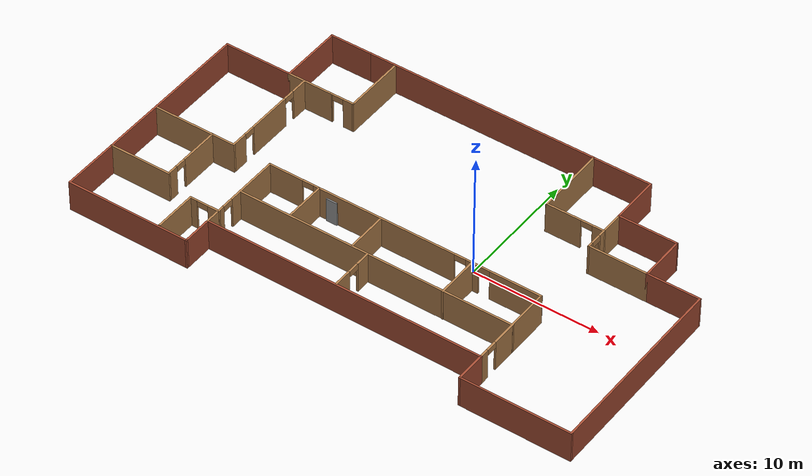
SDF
<?xml version='1.0'?>
<sdf version='1.6'>
  <model name='model'>
    <pose frame=''>-5.34614 0.527139 0 0 -0 0</pose>
    <link name='Door_8'>
      <collision name='Door_8_Collision'>
        <geometry>
          <box>
            <size>0.9 0.17 2</size>
          </box>
        </geometry>
        <pose frame=''>0 0 1 0 -0 0</pose>
      </collision>
      <visual name='Door_8_Visual'>
        <pose frame=''>0 0 1 0 -0 0</pose>
        <geometry>
          <box>
            <size>0.9 0.17 2</size>
          </box>
        </geometry>
        <material>
          <script>
            <uri>file://media/materials/scripts/gazebo.material</uri>
            <name>Gazebo/Grey</name>
          </script>
        </material>
      </visual>
      <pose frame=''>-5.16966 -2.07672 0 0 -0 0</pose>
    </link>
    <link name='Wall_34'>
      <collision name='Wall_34_Collision'>
        <geometry>
          <box>
            <size>23.2038 0.15 2.5</size>
          </box>
        </geometry>
        <pose frame=''>0 0 1.25 0 -0 0</pose>
      </collision>
      <visual name='Wall_34_Visual'>
        <pose frame=''>0 0 1.25 0 -0 0</pose>
        <geometry>
          <box>
            <size>23.2038 0.15 2.5</size>
          </box>
        </geometry>
        <material>
          <script>
            <uri>file://media/materials/scripts/gazebo.material</uri>
            <name>Gazebo/Bricks</name>
          </script>
          <ambient>0.760784 0.662745 0.627451 1</ambient>
        </material>
        <meta>
          <layer>0</layer>
        </meta>
      </visual>
      <pose frame=''>0.04806 11.275 0 0 -0 1.2e-05</pose>
    </link>
    <link name='Wall_36'>
      <collision name='Wall_36_Collision'>
        <geometry>
          <box>
            <size>4 0.15 2.5</size>
          </box>
        </geometry>
        <pose frame=''>0 0 1.25 0 -0 0</pose>
      </collision>
      <visual name='Wall_36_Visual'>
        <pose frame=''>0 0 1.25 0 -0 0</pose>
        <geometry>
          <box>
            <size>4 0.15 2.5</size>
          </box>
        </geometry>
        <material>
          <script>
            <uri>file://media/materials/scripts/gazebo.material</uri>
            <name>Gazebo/Bricks</name>
          </script>
          <ambient>0.760784 0.662745 0.627451 1</ambient>
        </material>
        <meta>
          <layer>0</layer>
        </meta>
      </visual>
      <pose frame=''>11.5751 9.35 0 0 0 -1.57075</pose>
    </link>
    <link name='Wall_37'>
      <collision name='Wall_37_Collision'>
        <geometry>
          <box>
            <size>4.74984 0.15 2.5</size>
          </box>
        </geometry>
        <pose frame=''>0 0 1.25 0 -0 0</pose>
      </collision>
      <visual name='Wall_37_Visual'>
        <pose frame=''>0 0 1.25 0 -0 0</pose>
        <geometry>
          <box>
            <size>4.74984 0.15 2.5</size>
          </box>
        </geometry>
        <material>
          <script>
            <uri>file://media/materials/scripts/gazebo.material</uri>
            <name>Gazebo/Bricks</name>
          </script>
          <ambient>0.760784 0.662745 0.627451 1</ambient>
        </material>
        <meta>
          <layer>0</layer>
        </meta>
      </visual>
      <pose frame=''>13.8751 7.425 0 0 -0 6.1e-05</pose>
    </link>
    <link name='Wall_38'>
      <collision name='Wall_38_Collision'>
        <geometry>
          <box>
            <size>3.75 0.15 2.5</size>
          </box>
        </geometry>
        <pose frame=''>0 0 1.25 0 -0 0</pose>
      </collision>
      <visual name='Wall_38_Visual'>
        <pose frame=''>0 0 1.25 0 -0 0</pose>
        <geometry>
          <box>
            <size>3.75 0.15 2.5</size>
          </box>
        </geometry>
        <material>
          <script>
            <uri>file://media/materials/scripts/gazebo.material</uri>
            <name>Gazebo/Bricks</name>
          </script>
          <ambient>0.760784 0.662745 0.627451 1</ambient>
        </material>
        <meta>
          <layer>0</layer>
        </meta>
      </visual>
      <pose frame=''>16.1751 5.625 0 0 0 -1.57075</pose>
    </link>
    <link name='Wall_39'>
      <collision name='Wall_39_Collision'>
        <geometry>
          <box>
            <size>4.25 0.15 2.5</size>
          </box>
        </geometry>
        <pose frame=''>0 0 1.25 0 -0 0</pose>
      </collision>
      <visual name='Wall_39_Visual'>
        <pose frame=''>0 0 1.25 0 -0 0</pose>
        <geometry>
          <box>
            <size>4.25 0.15 2.5</size>
          </box>
        </geometry>
        <material>
          <script>
            <uri>file://media/materials/scripts/gazebo.material</uri>
            <name>Gazebo/Bricks</name>
          </script>
          <ambient>0.760784 0.662745 0.627451 1</ambient>
        </material>
        <meta>
          <layer>0</layer>
        </meta>
      </visual>
      <pose frame=''>18.2251 3.825 0 0 -0 6.9e-05</pose>
    </link>
    <link name='Wall_40'>
      <collision name='Wall_40_Collision'>
        <geometry>
          <box>
            <size>15.25 0.15 2.5</size>
          </box>
        </geometry>
        <pose frame=''>0 0 1.25 0 -0 0</pose>
      </collision>
      <visual name='Wall_40_Visual'>
        <pose frame=''>0 0 1.25 0 -0 0</pose>
        <geometry>
          <box>
            <size>15.25 0.15 2.5</size>
          </box>
        </geometry>
        <material>
          <script>
            <uri>file://media/materials/scripts/gazebo.material</uri>
            <name>Gazebo/Bricks</name>
          </script>
          <ambient>0.760784 0.662745 0.627451 1</ambient>
        </material>
        <meta>
          <layer>0</layer>
        </meta>
      </visual>
      <pose frame=''>20.275 -3.72486 0 0 0 -1.5708</pose>
    </link>
    <link name='Wall_41'>
      <collision name='Wall_41_Collision'>
        <geometry>
          <box>
            <size>8.75 0.15 2.5</size>
          </box>
        </geometry>
        <pose frame=''>0 0 1.25 0 -0 0</pose>
      </collision>
      <visual name='Wall_41_Visual'>
        <pose frame=''>0 0 1.25 0 -0 0</pose>
        <geometry>
          <box>
            <size>8.75 0.15 2.5</size>
          </box>
        </geometry>
        <material>
          <script>
            <uri>file://media/materials/scripts/gazebo.material</uri>
            <name>Gazebo/Bricks</name>
          </script>
          <ambient>0.760784 0.662745 0.627451 1</ambient>
        </material>
        <meta>
          <layer>0</layer>
        </meta>
      </visual>
      <pose frame=''>15.975 -11.2749 0 0 -0 3.14159</pose>
    </link>
    <link name='Wall_42'>
      <collision name='Wall_42_Collision'>
        <geometry>
          <box>
            <size>2.5 0.15 2.5</size>
          </box>
        </geometry>
        <pose frame=''>0 0 1.25 0 -0 0</pose>
      </collision>
      <visual name='Wall_42_Visual'>
        <pose frame=''>0 0 1.25 0 -0 0</pose>
        <geometry>
          <box>
            <size>2.5 0.15 2.5</size>
          </box>
        </geometry>
        <material>
          <script>
            <uri>file://media/materials/scripts/gazebo.material</uri>
            <name>Gazebo/Bricks</name>
          </script>
          <ambient>0.760784 0.662745 0.627451 1</ambient>
        </material>
        <meta>
          <layer>0</layer>
        </meta>
      </visual>
      <pose frame=''>11.675 -10.0999 0 0 -0 1.5708</pose>
    </link>
    <link name='Wall_43'>
      <collision name='Wall_43_Collision'>
        <geometry>
          <box>
            <size>22.25 0.15 2.5</size>
          </box>
        </geometry>
        <pose frame=''>0 0 1.25 0 -0 0</pose>
      </collision>
      <visual name='Wall_43_Visual'>
        <pose frame=''>0 0 1.25 0 -0 0</pose>
        <geometry>
          <box>
            <size>22.25 0.15 2.5</size>
          </box>
        </geometry>
        <material>
          <script>
            <uri>file://media/materials/scripts/gazebo.material</uri>
            <name>Gazebo/Bricks</name>
          </script>
          <ambient>0.760784 0.662745 0.627451 1</ambient>
        </material>
        <meta>
          <layer>0</layer>
        </meta>
      </visual>
      <pose frame=''>0.624981 -8.92486 0 0 -0 3.14159</pose>
    </link>
    <link name='Wall_44'>
      <collision name='Wall_44_Collision'>
        <geometry>
          <box>
            <size>2.5 0.15 2.5</size>
          </box>
        </geometry>
        <pose frame=''>0 0 1.25 0 -0 0</pose>
      </collision>
      <visual name='Wall_44_Visual'>
        <pose frame=''>0 0 1.25 0 -0 0</pose>
        <geometry>
          <box>
            <size>2.5 0.15 2.5</size>
          </box>
        </geometry>
        <material>
          <script>
            <uri>file://media/materials/scripts/gazebo.material</uri>
            <name>Gazebo/Bricks</name>
          </script>
          <ambient>0.760784 0.662745 0.627451 1</ambient>
        </material>
        <meta>
          <layer>0</layer>
        </meta>
      </visual>
      <pose frame=''>-10.425 -10.0999 0 0 0 -1.5708</pose>
    </link>
    <link name='Wall_45'>
      <collision name='Wall_45_Collision'>
        <geometry>
          <box>
            <size>10 0.15 2.5</size>
          </box>
        </geometry>
        <pose frame=''>0 0 1.25 0 -0 0</pose>
      </collision>
      <visual name='Wall_45_Visual'>
        <pose frame=''>0 0 1.25 0 -0 0</pose>
        <geometry>
          <box>
            <size>10 0.15 2.5</size>
          </box>
        </geometry>
        <material>
          <script>
            <uri>file://media/materials/scripts/gazebo.material</uri>
            <name>Gazebo/Bricks</name>
          </script>
          <ambient>0.760784 0.662745 0.627451 1</ambient>
        </material>
        <meta>
          <layer>0</layer>
        </meta>
      </visual>
      <pose frame=''>-15.3499 -11.275 0 0 0 -3.14156</pose>
    </link>
    <link name='Wall_46'>
      <collision name='Wall_46_Collision'>
        <geometry>
          <box>
            <size>17.685 0.15 2.5</size>
          </box>
        </geometry>
        <pose frame=''>0 0 1.25 0 -0 0</pose>
      </collision>
      <visual name='Wall_46_Visual'>
        <pose frame=''>0 0 1.25 0 -0 0</pose>
        <geometry>
          <box>
            <size>17.685 0.15 2.5</size>
          </box>
        </geometry>
        <material>
          <script>
            <uri>file://media/materials/scripts/gazebo.material</uri>
            <name>Gazebo/Bricks</name>
          </script>
          <ambient>0.760784 0.662745 0.627451 1</ambient>
        </material>
        <meta>
          <layer>0</layer>
        </meta>
      </visual>
      <pose frame=''>-20.2749 -2.50764 0 0 -0 1.5708</pose>
    </link>
    <link name='Wall_47'>
      <collision name='Wall_47_Collision'>
        <geometry>
          <box>
            <size>5.52741 0.15 2.5</size>
          </box>
        </geometry>
        <pose frame=''>0 0 1.25 0 -0 0</pose>
      </collision>
      <visual name='Wall_47_Visual'>
        <pose frame=''>0 0 1.25 0 -0 0</pose>
        <geometry>
          <box>
            <size>5.52741 0.15 2.5</size>
          </box>
        </geometry>
        <material>
          <script>
            <uri>file://media/materials/scripts/gazebo.material</uri>
            <name>Gazebo/Bricks</name>
          </script>
          <ambient>0.760784 0.662745 0.627451 1</ambient>
        </material>
        <meta>
          <layer>0</layer>
        </meta>
      </visual>
      <pose frame=''>-17.5864 6.25986 0 0 -0 0</pose>
    </link>
    <link name='Wall_48'>
      <collision name='Wall_48_Collision'>
        <geometry>
          <box>
            <size>5.16467 0.15 2.5</size>
          </box>
        </geometry>
        <pose frame=''>0 0 1.25 0 -0 0</pose>
      </collision>
      <visual name='Wall_48_Visual'>
        <pose frame=''>0 0 1.25 0 -0 0</pose>
        <geometry>
          <box>
            <size>5.16467 0.15 2.5</size>
          </box>
        </geometry>
        <material>
          <script>
            <uri>file://media/materials/scripts/gazebo.material</uri>
            <name>Gazebo/Bricks</name>
          </script>
          <ambient>0.760784 0.662745 0.627451 1</ambient>
        </material>
        <meta>
          <layer>0</layer>
        </meta>
      </visual>
      <pose frame=''>-14.8979 8.76736 0 0 -0 1.5708</pose>
    </link>
    <link name='Wall_49'>
      <collision name='Wall_49_Collision'>
        <geometry>
          <box>
            <size>3.569 0.15 2.5</size>
          </box>
        </geometry>
        <pose frame=''>0 0 1.25 0 -0 0</pose>
      </collision>
      <visual name='Wall_49_Visual'>
        <pose frame=''>0 0 1.25 0 -0 0</pose>
        <geometry>
          <box>
            <size>3.569 0.15 2.5</size>
          </box>
        </geometry>
        <material>
          <script>
            <uri>file://media/materials/scripts/gazebo.material</uri>
            <name>Gazebo/Bricks</name>
          </script>
          <ambient>0.760784 0.662745 0.627451 1</ambient>
        </material>
        <meta>
          <layer>0</layer>
        </meta>
      </visual>
      <pose frame=''>-13.1884 11.2749 0 0 -0 0</pose>
    </link>
    <link name='Wall_51'>
      <collision name='Wall_51_Collision'>
        <geometry>
          <box>
            <size>3.75 0.15 2.5</size>
          </box>
        </geometry>
        <pose frame=''>0 0 1.25 0 -0 0</pose>
      </collision>
      <visual name='Wall_51_Visual'>
        <pose frame=''>0 0 1.25 0 -0 0</pose>
        <geometry>
          <box>
            <size>3.75 0.15 2.5</size>
          </box>
        </geometry>
        <material>
          <script>
            <uri>file://media/materials/scripts/gazebo.material</uri>
            <name>Gazebo/Wood</name>
          </script>
          <ambient>0.996078 0.47451 0.0196078 1</ambient>
        </material>
        <meta>
          <layer>0</layer>
        </meta>
      </visual>
      <pose frame=''>-13.0979 6.25986 0 0 -0 0</pose>
    </link>
    <link name='Wall_52'>
      <pose frame=''>-10.3729 6.25986 0 0 -0 0</pose>
      <visual name='Wall_52_Visual_0'>
        <pose frame=''>-0.904318 0 1.25 0 -0 0</pose>
        <geometry>
          <box>
            <size>0.191363 0.15 2.5</size>
          </box>
        </geometry>
        <material>
          <script>
            <uri>file://media/materials/scripts/gazebo.material</uri>
            <name>Gazebo/Wood</name>
          </script>
          <ambient>0.996078 0.47451 0.0196078 1</ambient>
        </material>
        <meta>
          <layer>0</layer>
        </meta>
      </visual>
      <collision name='Wall_52_Collision_0'>
        <geometry>
          <box>
            <size>0.191363 0.15 2.5</size>
          </box>
        </geometry>
        <pose frame=''>-0.904318 0 1.25 0 -0 0</pose>
      </collision>
      <visual name='Wall_52_Visual_1'>
        <pose frame=''>0.545682 0 1.25 0 -0 0</pose>
        <geometry>
          <box>
            <size>0.908637 0.15 2.5</size>
          </box>
        </geometry>
        <material>
          <script>
            <uri>file://media/materials/scripts/gazebo.material</uri>
            <name>Gazebo/Wood</name>
          </script>
          <ambient>0.996078 0.47451 0.0196078 1</ambient>
        </material>
        <meta>
          <layer>0</layer>
        </meta>
      </visual>
      <collision name='Wall_52_Collision_1'>
        <geometry>
          <box>
            <size>0.908637 0.15 2.5</size>
          </box>
        </geometry>
        <pose frame=''>0.545682 0 1.25 0 -0 0</pose>
      </collision>
      <visual name='Wall_52_Visual_2'>
        <pose frame=''>-0.358637 0 2.25 0 -0 0</pose>
        <geometry>
          <box>
            <size>0.9 0.15 0.5</size>
          </box>
        </geometry>
        <material>
          <script>
            <uri>file://media/materials/scripts/gazebo.material</uri>
            <name>Gazebo/Wood</name>
          </script>
          <ambient>0.996078 0.47451 0.0196078 1</ambient>
        </material>
        <meta>
          <layer>0</layer>
        </meta>
      </visual>
      <collision name='Wall_52_Collision_2'>
        <geometry>
          <box>
            <size>0.9 0.15 0.5</size>
          </box>
        </geometry>
        <pose frame=''>-0.358637 0 2.25 0 -0 0</pose>
      </collision>
    </link>
    <link name='Wall_53'>
      <collision name='Wall_53_Collision'>
        <geometry>
          <box>
            <size>5 0.15 2.5</size>
          </box>
        </geometry>
        <pose frame=''>0 0 1.25 0 -0 0</pose>
      </collision>
      <visual name='Wall_53_Visual'>
        <pose frame=''>0 0 1.25 0 -0 0</pose>
        <geometry>
          <box>
            <size>5 0.15 2.5</size>
          </box>
        </geometry>
        <material>
          <script>
            <uri>file://media/materials/scripts/gazebo.material</uri>
            <name>Gazebo/Wood</name>
          </script>
          <ambient>0.996078 0.47451 0.0196078 1</ambient>
        </material>
        <meta>
          <layer>0</layer>
        </meta>
      </visual>
      <pose frame=''>-9.44786 8.68486 0 0 -0 1.5708</pose>
    </link>
    <link name='Wall_55'>
      <pose frame=''>-13.5999 2.19855 0 0 0 -1.5708</pose>
      <visual name='Wall_55_Visual_0'>
        <pose frame=''>-3.40302 0 1.25 0 -0 0</pose>
        <geometry>
          <box>
            <size>1.44397 0.15 2.5</size>
          </box>
        </geometry>
        <material>
          <script>
            <uri>file://media/materials/scripts/gazebo.material</uri>
            <name>Gazebo/Wood</name>
          </script>
          <ambient>0.996078 0.47451 0.0196078 1</ambient>
        </material>
        <meta>
          <layer>0</layer>
        </meta>
      </visual>
      <collision name='Wall_55_Collision_0'>
        <geometry>
          <box>
            <size>1.44397 0.15 2.5</size>
          </box>
        </geometry>
        <pose frame=''>-3.40302 0 1.25 0 -0 0</pose>
      </collision>
      <visual name='Wall_55_Visual_1'>
        <pose frame=''>0.042675 0 1.25 0 -0 0</pose>
        <geometry>
          <box>
            <size>3.64742 0.15 2.5</size>
          </box>
        </geometry>
        <material>
          <script>
            <uri>file://media/materials/scripts/gazebo.material</uri>
            <name>Gazebo/Wood</name>
          </script>
          <ambient>0.996078 0.47451 0.0196078 1</ambient>
        </material>
        <meta>
          <layer>0</layer>
        </meta>
      </visual>
      <collision name='Wall_55_Collision_1'>
        <geometry>
          <box>
            <size>3.64742 0.15 2.5</size>
          </box>
        </geometry>
        <pose frame=''>0.042675 0 1.25 0 -0 0</pose>
      </collision>
      <visual name='Wall_55_Visual_2'>
        <pose frame=''>3.44569 0 1.25 0 -0 0</pose>
        <geometry>
          <box>
            <size>1.35862 0.15 2.5</size>
          </box>
        </geometry>
        <material>
          <script>
            <uri>file://media/materials/scripts/gazebo.material</uri>
            <name>Gazebo/Wood</name>
          </script>
          <ambient>0.996078 0.47451 0.0196078 1</ambient>
        </material>
        <meta>
          <layer>0</layer>
        </meta>
      </visual>
      <collision name='Wall_55_Collision_2'>
        <geometry>
          <box>
            <size>1.35862 0.15 2.5</size>
          </box>
        </geometry>
        <pose frame=''>3.44569 0 1.25 0 -0 0</pose>
      </collision>
      <visual name='Wall_55_Visual_3'>
        <pose frame=''>-2.23103 0 2.25 0 -0 0</pose>
        <geometry>
          <box>
            <size>0.9 0.15 0.5</size>
          </box>
        </geometry>
        <material>
          <script>
            <uri>file://media/materials/scripts/gazebo.material</uri>
            <name>Gazebo/Wood</name>
          </script>
          <ambient>0.996078 0.47451 0.0196078 1</ambient>
        </material>
        <meta>
          <layer>0</layer>
        </meta>
      </visual>
      <collision name='Wall_55_Collision_3'>
        <geometry>
          <box>
            <size>0.9 0.15 0.5</size>
          </box>
        </geometry>
        <pose frame=''>-2.23103 0 2.25 0 -0 0</pose>
      </collision>
      <visual name='Wall_55_Visual_4'>
        <pose frame=''>2.31638 0 2.25 0 -0 0</pose>
        <geometry>
          <box>
            <size>0.9 0.15 0.5</size>
          </box>
        </geometry>
        <material>
          <script>
            <uri>file://media/materials/scripts/gazebo.material</uri>
            <name>Gazebo/Wood</name>
          </script>
          <ambient>0.996078 0.47451 0.0196078 1</ambient>
        </material>
        <meta>
          <layer>0</layer>
        </meta>
      </visual>
      <collision name='Wall_55_Collision_4'>
        <geometry>
          <box>
            <size>0.9 0.15 0.5</size>
          </box>
        </geometry>
        <pose frame=''>2.31638 0 2.25 0 -0 0</pose>
      </collision>
    </link>
    <link name='Wall_56'>
      <collision name='Wall_56_Collision'>
        <geometry>
          <box>
            <size>6.75 0.15 2.5</size>
          </box>
        </geometry>
        <pose frame=''>0 0 1.25 0 -0 0</pose>
      </collision>
      <visual name='Wall_56_Visual'>
        <pose frame=''>0 0 1.25 0 -0 0</pose>
        <geometry>
          <box>
            <size>6.75 0.15 2.5</size>
          </box>
        </geometry>
        <material>
          <script>
            <uri>file://media/materials/scripts/gazebo.material</uri>
            <name>Gazebo/Wood</name>
          </script>
          <ambient>0.996078 0.47451 0.0196078 1</ambient>
        </material>
        <meta>
          <layer>0</layer>
        </meta>
      </visual>
      <pose frame=''>-16.8999 -1.85145 0 0 -0 3.14159</pose>
    </link>
    <link name='Wall_58'>
      <pose frame=''>-15.4188 -4.29183 0 0 0 -1.5708</pose>
      <visual name='Wall_58_Visual_0'>
        <pose frame=''>-0.903514 0 1.25 0 -0 0</pose>
        <geometry>
          <box>
            <size>3.19297 0.15 2.5</size>
          </box>
        </geometry>
        <material>
          <script>
            <uri>file://media/materials/scripts/gazebo.material</uri>
            <name>Gazebo/Wood</name>
          </script>
          <ambient>0.996078 0.47451 0.0196078 1</ambient>
        </material>
        <meta>
          <layer>0</layer>
        </meta>
      </visual>
      <collision name='Wall_58_Collision_0'>
        <geometry>
          <box>
            <size>3.19297 0.15 2.5</size>
          </box>
        </geometry>
        <pose frame=''>-0.903514 0 1.25 0 -0 0</pose>
      </collision>
      <visual name='Wall_58_Visual_1'>
        <pose frame=''>2.04649 0 1.25 0 -0 0</pose>
        <geometry>
          <box>
            <size>0.907027 0.15 2.5</size>
          </box>
        </geometry>
        <material>
          <script>
            <uri>file://media/materials/scripts/gazebo.material</uri>
            <name>Gazebo/Wood</name>
          </script>
          <ambient>0.996078 0.47451 0.0196078 1</ambient>
        </material>
        <meta>
          <layer>0</layer>
        </meta>
      </visual>
      <collision name='Wall_58_Collision_1'>
        <geometry>
          <box>
            <size>0.907027 0.15 2.5</size>
          </box>
        </geometry>
        <pose frame=''>2.04649 0 1.25 0 -0 0</pose>
      </collision>
      <visual name='Wall_58_Visual_2'>
        <pose frame=''>1.14297 0 2.25 0 -0 0</pose>
        <geometry>
          <box>
            <size>0.9 0.15 0.5</size>
          </box>
        </geometry>
        <material>
          <script>
            <uri>file://media/materials/scripts/gazebo.material</uri>
            <name>Gazebo/Wood</name>
          </script>
          <ambient>0.996078 0.47451 0.0196078 1</ambient>
        </material>
        <meta>
          <layer>0</layer>
        </meta>
      </visual>
      <collision name='Wall_58_Collision_2'>
        <geometry>
          <box>
            <size>0.9 0.15 0.5</size>
          </box>
        </geometry>
        <pose frame=''>1.14297 0 2.25 0 -0 0</pose>
      </collision>
    </link>
    <link name='Wall_59'>
      <collision name='Wall_59_Collision'>
        <geometry>
          <box>
            <size>5 0.15 2.5</size>
          </box>
        </geometry>
        <pose frame=''>0 0 1.25 0 -0 0</pose>
      </collision>
      <visual name='Wall_59_Visual'>
        <pose frame=''>0 0 1.25 0 -0 0</pose>
        <geometry>
          <box>
            <size>5 0.15 2.5</size>
          </box>
        </geometry>
        <material>
          <script>
            <uri>file://media/materials/scripts/gazebo.material</uri>
            <name>Gazebo/Wood</name>
          </script>
          <ambient>0.996078 0.47451 0.0196078 1</ambient>
        </material>
        <meta>
          <layer>0</layer>
        </meta>
      </visual>
      <pose frame=''>-17.8438 -6.71683 0 0 -0 3.14159</pose>
    </link>
    <link name='Wall_61'>
      <pose frame=''>-10.425 -5.47773 0 0 -0 1.5708</pose>
      <visual name='Wall_61_Visual_0'>
        <pose frame=''>-2.62923 0 1.25 0 -0 0</pose>
        <geometry>
          <box>
            <size>1.78581 0.15 2.5</size>
          </box>
        </geometry>
        <material>
          <script>
            <uri>file://media/materials/scripts/gazebo.material</uri>
            <name>Gazebo/Wood</name>
          </script>
          <ambient>0.435294 0.796078 0.67451 1</ambient>
        </material>
        <meta>
          <layer>0</layer>
        </meta>
      </visual>
      <collision name='Wall_61_Collision_0'>
        <geometry>
          <box>
            <size>1.78581 0.15 2.5</size>
          </box>
        </geometry>
        <pose frame=''>-2.62923 0 1.25 0 -0 0</pose>
      </collision>
      <visual name='Wall_61_Visual_1'>
        <pose frame=''>1.3429 0 1.25 0 -0 0</pose>
        <geometry>
          <box>
            <size>4.35846 0.15 2.5</size>
          </box>
        </geometry>
        <material>
          <script>
            <uri>file://media/materials/scripts/gazebo.material</uri>
            <name>Gazebo/Wood</name>
          </script>
          <ambient>0.435294 0.796078 0.67451 1</ambient>
        </material>
        <meta>
          <layer>0</layer>
        </meta>
      </visual>
      <collision name='Wall_61_Collision_1'>
        <geometry>
          <box>
            <size>4.35846 0.15 2.5</size>
          </box>
        </geometry>
        <pose frame=''>1.3429 0 1.25 0 -0 0</pose>
      </collision>
      <visual name='Wall_61_Visual_2'>
        <pose frame=''>-1.28633 0 2.25 0 -0 0</pose>
        <geometry>
          <box>
            <size>0.9 0.15 0.5</size>
          </box>
        </geometry>
        <material>
          <script>
            <uri>file://media/materials/scripts/gazebo.material</uri>
            <name>Gazebo/Wood</name>
          </script>
          <ambient>0.435294 0.796078 0.67451 1</ambient>
        </material>
        <meta>
          <layer>0</layer>
        </meta>
      </visual>
      <collision name='Wall_61_Collision_2'>
        <geometry>
          <box>
            <size>0.9 0.15 0.5</size>
          </box>
        </geometry>
        <pose frame=''>-1.28633 0 2.25 0 -0 0</pose>
      </collision>
    </link>
    <link name='Wall_62'>
      <pose frame=''>0.624981 -1.99561 0 0 -0 0</pose>
      <visual name='Wall_62_Visual_0'>
        <pose frame=''>-9.69924 0 1.25 0 -0 0</pose>
        <geometry>
          <box>
            <size>2.85151 0.15 2.5</size>
          </box>
        </geometry>
        <material>
          <script>
            <uri>file://media/materials/scripts/gazebo.material</uri>
            <name>Gazebo/Wood</name>
          </script>
          <ambient>0.435294 0.796078 0.67451 1</ambient>
        </material>
        <meta>
          <layer>0</layer>
        </meta>
      </visual>
      <collision name='Wall_62_Collision_0'>
        <geometry>
          <box>
            <size>2.85151 0.15 2.5</size>
          </box>
        </geometry>
        <pose frame=''>-9.69924 0 1.25 0 -0 0</pose>
      </collision>
      <visual name='Wall_62_Visual_1'>
        <pose frame=''>-1.59702 0 1.25 0 -0 0</pose>
        <geometry>
          <box>
            <size>11.5529 0.15 2.5</size>
          </box>
        </geometry>
        <material>
          <script>
            <uri>file://media/materials/scripts/gazebo.material</uri>
            <name>Gazebo/Wood</name>
          </script>
          <ambient>0.435294 0.796078 0.67451 1</ambient>
        </material>
        <meta>
          <layer>0</layer>
        </meta>
      </visual>
      <collision name='Wall_62_Collision_1'>
        <geometry>
          <box>
            <size>11.5529 0.15 2.5</size>
          </box>
        </geometry>
        <pose frame=''>-1.59702 0 1.25 0 -0 0</pose>
      </collision>
      <visual name='Wall_62_Visual_2'>
        <pose frame=''>5.59139 0 1.25 0 -0 0</pose>
        <geometry>
          <box>
            <size>1.02391 0.15 2.5</size>
          </box>
        </geometry>
        <material>
          <script>
            <uri>file://media/materials/scripts/gazebo.material</uri>
            <name>Gazebo/Wood</name>
          </script>
          <ambient>0.435294 0.796078 0.67451 1</ambient>
        </material>
        <meta>
          <layer>0</layer>
        </meta>
      </visual>
      <collision name='Wall_62_Collision_2'>
        <geometry>
          <box>
            <size>1.02391 0.15 2.5</size>
          </box>
        </geometry>
        <pose frame=''>5.59139 0 1.25 0 -0 0</pose>
      </collision>
      <visual name='Wall_62_Visual_3'>
        <pose frame=''>9.06417 0 1.25 0 -0 0</pose>
        <geometry>
          <box>
            <size>4.12166 0.15 2.5</size>
          </box>
        </geometry>
        <material>
          <script>
            <uri>file://media/materials/scripts/gazebo.material</uri>
            <name>Gazebo/Wood</name>
          </script>
          <ambient>0.435294 0.796078 0.67451 1</ambient>
        </material>
        <meta>
          <layer>0</layer>
        </meta>
      </visual>
      <collision name='Wall_62_Collision_3'>
        <geometry>
          <box>
            <size>4.12166 0.15 2.5</size>
          </box>
        </geometry>
        <pose frame=''>9.06417 0 1.25 0 -0 0</pose>
      </collision>
      <visual name='Wall_62_Visual_4'>
        <pose frame=''>-7.82349 0 2.25 0 -0 0</pose>
        <geometry>
          <box>
            <size>0.9 0.15 0.5</size>
          </box>
        </geometry>
        <material>
          <script>
            <uri>file://media/materials/scripts/gazebo.material</uri>
            <name>Gazebo/Wood</name>
          </script>
          <ambient>0.435294 0.796078 0.67451 1</ambient>
        </material>
        <meta>
          <layer>0</layer>
        </meta>
      </visual>
      <collision name='Wall_62_Collision_4'>
        <geometry>
          <box>
            <size>0.9 0.15 0.5</size>
          </box>
        </geometry>
        <pose frame=''>-7.82349 0 2.25 0 -0 0</pose>
      </collision>
      <visual name='Wall_62_Visual_5'>
        <pose frame=''>4.62944 0 2.25 0 -0 0</pose>
        <geometry>
          <box>
            <size>0.9 0.15 0.5</size>
          </box>
        </geometry>
        <material>
          <script>
            <uri>file://media/materials/scripts/gazebo.material</uri>
            <name>Gazebo/Wood</name>
          </script>
          <ambient>0.435294 0.796078 0.67451 1</ambient>
        </material>
        <meta>
          <layer>0</layer>
        </meta>
      </visual>
      <collision name='Wall_62_Collision_5'>
        <geometry>
          <box>
            <size>0.9 0.15 0.5</size>
          </box>
        </geometry>
        <pose frame=''>4.62944 0 2.25 0 -0 0</pose>
      </collision>
      <visual name='Wall_62_Visual_6'>
        <pose frame=''>6.55334 0 2.25 0 -0 0</pose>
        <geometry>
          <box>
            <size>0.9 0.15 0.5</size>
          </box>
        </geometry>
        <material>
          <script>
            <uri>file://media/materials/scripts/gazebo.material</uri>
            <name>Gazebo/Wood</name>
          </script>
          <ambient>0.435294 0.796078 0.67451 1</ambient>
        </material>
        <meta>
          <layer>0</layer>
        </meta>
      </visual>
      <collision name='Wall_62_Collision_6'>
        <geometry>
          <box>
            <size>0.9 0.15 0.5</size>
          </box>
        </geometry>
        <pose frame=''>6.55334 0 2.25 0 -0 0</pose>
      </collision>
    </link>
    <link name='Wall_63'>
      <pose frame=''>11.675 -5.47773 0 0 0 -1.5708</pose>
      <visual name='Wall_63_Visual_0'>
        <pose frame=''>-0.853181 0 1.25 0 -0 0</pose>
        <geometry>
          <box>
            <size>5.3379 0.15 2.5</size>
          </box>
        </geometry>
        <material>
          <script>
            <uri>file://media/materials/scripts/gazebo.material</uri>
            <name>Gazebo/Wood</name>
          </script>
          <ambient>0.435294 0.796078 0.67451 1</ambient>
        </material>
        <meta>
          <layer>0</layer>
        </meta>
      </visual>
      <collision name='Wall_63_Collision_0'>
        <geometry>
          <box>
            <size>5.3379 0.15 2.5</size>
          </box>
        </geometry>
        <pose frame=''>-0.853181 0 1.25 0 -0 0</pose>
      </collision>
      <visual name='Wall_63_Visual_1'>
        <pose frame=''>3.11895 0 1.25 0 -0 0</pose>
        <geometry>
          <box>
            <size>0.806362 0.15 2.5</size>
          </box>
        </geometry>
        <material>
          <script>
            <uri>file://media/materials/scripts/gazebo.material</uri>
            <name>Gazebo/Wood</name>
          </script>
          <ambient>0.435294 0.796078 0.67451 1</ambient>
        </material>
        <meta>
          <layer>0</layer>
        </meta>
      </visual>
      <collision name='Wall_63_Collision_1'>
        <geometry>
          <box>
            <size>0.806362 0.15 2.5</size>
          </box>
        </geometry>
        <pose frame=''>3.11895 0 1.25 0 -0 0</pose>
      </collision>
      <visual name='Wall_63_Visual_2'>
        <pose frame=''>2.26577 0 2.25 0 -0 0</pose>
        <geometry>
          <box>
            <size>0.9 0.15 0.5</size>
          </box>
        </geometry>
        <material>
          <script>
            <uri>file://media/materials/scripts/gazebo.material</uri>
            <name>Gazebo/Wood</name>
          </script>
          <ambient>0.435294 0.796078 0.67451 1</ambient>
        </material>
        <meta>
          <layer>0</layer>
        </meta>
      </visual>
      <collision name='Wall_63_Collision_2'>
        <geometry>
          <box>
            <size>0.9 0.15 0.5</size>
          </box>
        </geometry>
        <pose frame=''>2.26577 0 2.25 0 -0 0</pose>
      </collision>
    </link>
    <link name='Wall_65'>
      <pose frame=''>-11.5917 -7.7435 0 0 -0 3.14159</pose>
      <visual name='Wall_65_Visual_0'>
        <pose frame=''>-0.772878 0 1.25 0 -0 0</pose>
        <geometry>
          <box>
            <size>0.954243 0.15 2.5</size>
          </box>
        </geometry>
        <material>
          <script>
            <uri>file://media/materials/scripts/gazebo.material</uri>
            <name>Gazebo/Wood</name>
          </script>
          <ambient>1 1 1 1</ambient>
        </material>
        <meta>
          <layer>0</layer>
        </meta>
      </visual>
      <collision name='Wall_65_Collision_0'>
        <geometry>
          <box>
            <size>0.954243 0.15 2.5</size>
          </box>
        </geometry>
        <pose frame=''>-0.772878 0 1.25 0 -0 0</pose>
      </collision>
      <visual name='Wall_65_Visual_1'>
        <pose frame=''>0.927122 0 1.25 0 -0 0</pose>
        <geometry>
          <box>
            <size>0.645757 0.15 2.5</size>
          </box>
        </geometry>
        <material>
          <script>
            <uri>file://media/materials/scripts/gazebo.material</uri>
            <name>Gazebo/Wood</name>
          </script>
          <ambient>1 1 1 1</ambient>
        </material>
        <meta>
          <layer>0</layer>
        </meta>
      </visual>
      <collision name='Wall_65_Collision_1'>
        <geometry>
          <box>
            <size>0.645757 0.15 2.5</size>
          </box>
        </geometry>
        <pose frame=''>0.927122 0 1.25 0 -0 0</pose>
      </collision>
      <visual name='Wall_65_Visual_2'>
        <pose frame=''>0.154243 0 2.25 0 -0 0</pose>
        <geometry>
          <box>
            <size>0.9 0.15 0.5</size>
          </box>
        </geometry>
        <material>
          <script>
            <uri>file://media/materials/scripts/gazebo.material</uri>
            <name>Gazebo/Wood</name>
          </script>
          <ambient>1 1 1 1</ambient>
        </material>
        <meta>
          <layer>0</layer>
        </meta>
      </visual>
      <collision name='Wall_65_Collision_2'>
        <geometry>
          <box>
            <size>0.9 0.15 0.5</size>
          </box>
        </geometry>
        <pose frame=''>0.154243 0 2.25 0 -0 0</pose>
      </collision>
    </link>
    <link name='Wall_66'>
      <collision name='Wall_66_Collision'>
        <geometry>
          <box>
            <size>3.5 0.15 2.5</size>
          </box>
        </geometry>
        <pose frame=''>0 0 1.25 0 -0 0</pose>
      </collision>
      <visual name='Wall_66_Visual'>
        <pose frame=''>0 0 1.25 0 -0 0</pose>
        <geometry>
          <box>
            <size>3.5 0.15 2.5</size>
          </box>
        </geometry>
        <material>
          <script>
            <uri>file://media/materials/scripts/gazebo.material</uri>
            <name>Gazebo/Wood</name>
          </script>
          <ambient>0.435294 0.796078 0.67451 1</ambient>
        </material>
        <meta>
          <layer>0</layer>
        </meta>
      </visual>
      <pose frame=''>-12.7667 -9.4185 0 0 0 -1.5708</pose>
    </link>
    <link name='Wall_68'>
      <collision name='Wall_68_Collision'>
        <geometry>
          <box>
            <size>22.25 0.15 2.5</size>
          </box>
        </geometry>
        <pose frame=''>0 0 1.25 0 -0 0</pose>
      </collision>
      <visual name='Wall_68_Visual'>
        <pose frame=''>0 0 1.25 0 -0 0</pose>
        <geometry>
          <box>
            <size>22.25 0.15 2.5</size>
          </box>
        </geometry>
        <material>
          <script>
            <uri>file://media/materials/scripts/gazebo.material</uri>
            <name>Gazebo/Wood</name>
          </script>
          <ambient>0.435294 0.796078 0.67451 1</ambient>
        </material>
        <meta>
          <layer>0</layer>
        </meta>
      </visual>
      <pose frame=''>0.633323 -5.32987 0 0 -0 0</pose>
    </link>
    <link name='Wall_71'>
      <pose frame=''>0.112139 -7.07714 0 0 0 -1.5708</pose>
      <visual name='Wall_71_Visual_0'>
        <pose frame=''>-1.1891 0 1.25 0 -0 0</pose>
        <geometry>
          <box>
            <size>1.27179 0.15 2.5</size>
          </box>
        </geometry>
        <material>
          <script>
            <uri>file://media/materials/scripts/gazebo.material</uri>
            <name>Gazebo/Wood</name>
          </script>
          <ambient>0.435294 0.796078 0.67451 1</ambient>
        </material>
        <meta>
          <layer>0</layer>
        </meta>
      </visual>
      <collision name='Wall_71_Collision_0'>
        <geometry>
          <box>
            <size>1.27179 0.15 2.5</size>
          </box>
        </geometry>
        <pose frame=''>-1.1891 0 1.25 0 -0 0</pose>
      </collision>
      <visual name='Wall_71_Visual_1'>
        <pose frame=''>1.0859 0 1.25 0 -0 0</pose>
        <geometry>
          <box>
            <size>1.47821 0.15 2.5</size>
          </box>
        </geometry>
        <material>
          <script>
            <uri>file://media/materials/scripts/gazebo.material</uri>
            <name>Gazebo/Wood</name>
          </script>
          <ambient>0.435294 0.796078 0.67451 1</ambient>
        </material>
        <meta>
          <layer>0</layer>
        </meta>
      </visual>
      <collision name='Wall_71_Collision_1'>
        <geometry>
          <box>
            <size>1.47821 0.15 2.5</size>
          </box>
        </geometry>
        <pose frame=''>1.0859 0 1.25 0 -0 0</pose>
      </collision>
      <visual name='Wall_71_Visual_2'>
        <pose frame=''>-0.103206 0 2.25 0 -0 0</pose>
        <geometry>
          <box>
            <size>0.9 0.15 0.5</size>
          </box>
        </geometry>
        <material>
          <script>
            <uri>file://media/materials/scripts/gazebo.material</uri>
            <name>Gazebo/Wood</name>
          </script>
          <ambient>0.435294 0.796078 0.67451 1</ambient>
        </material>
        <meta>
          <layer>0</layer>
        </meta>
      </visual>
      <collision name='Wall_71_Collision_2'>
        <geometry>
          <box>
            <size>0.9 0.15 0.5</size>
          </box>
        </geometry>
        <pose frame=''>-0.103206 0 2.25 0 -0 0</pose>
      </collision>
    </link>
    <link name='Wall_73'>
      <collision name='Wall_73_Collision'>
        <geometry>
          <box>
            <size>3.5 0.15 2.5</size>
          </box>
        </geometry>
        <pose frame=''>0 0 1.25 0 -0 0</pose>
      </collision>
      <visual name='Wall_73_Visual'>
        <pose frame=''>0 0 1.25 0 -0 0</pose>
        <geometry>
          <box>
            <size>3.5 0.15 2.5</size>
          </box>
        </geometry>
        <material>
          <script>
            <uri>file://media/materials/scripts/gazebo.material</uri>
            <name>Gazebo/Wood</name>
          </script>
          <ambient>0.435294 0.796078 0.67451 1</ambient>
        </material>
        <meta>
          <layer>0</layer>
        </meta>
      </visual>
      <pose frame=''>6.19888 -3.68176 0 0 0 -1.5708</pose>
    </link>
    <link name='Wall_75'>
      <collision name='Wall_75_Collision'>
        <geometry>
          <box>
            <size>3.37 0.15 2.5</size>
          </box>
        </geometry>
        <pose frame=''>0 0 1.25 0 -0 0</pose>
      </collision>
      <visual name='Wall_75_Visual'>
        <pose frame=''>0 0 1.25 0 -0 0</pose>
        <geometry>
          <box>
            <size>3.37 0.15 2.5</size>
          </box>
        </geometry>
        <material>
          <script>
            <uri>file://media/materials/scripts/gazebo.material</uri>
            <name>Gazebo/Wood</name>
          </script>
          <ambient>0.435294 0.796078 0.67451 1</ambient>
        </material>
        <meta>
          <layer>0</layer>
        </meta>
      </visual>
      <pose frame=''>-1.18186 -3.61714 0 0 0 -1.5708</pose>
    </link>
    <link name='Wall_78'>
      <collision name='Wall_78_Collision'>
        <geometry>
          <box>
            <size>3.41 0.15 2.5</size>
          </box>
        </geometry>
        <pose frame=''>0 0 1.25 0 -0 0</pose>
      </collision>
      <visual name='Wall_78_Visual'>
        <pose frame=''>0 0 1.25 0 -0 0</pose>
        <geometry>
          <box>
            <size>3.41 0.15 2.5</size>
          </box>
        </geometry>
        <material>
          <script>
            <uri>file://media/materials/scripts/gazebo.material</uri>
            <name>Gazebo/Wood</name>
          </script>
          <ambient>0.435294 0.796078 0.67451 1</ambient>
        </material>
        <meta>
          <layer>0</layer>
        </meta>
      </visual>
      <pose frame=''>-6.28886 -3.65714 0 0 0 -1.5708</pose>
    </link>
    <link name='Wall_80'>
      <collision name='Wall_80_Collision'>
        <geometry>
          <box>
            <size>5.75 0.15 2.5</size>
          </box>
        </geometry>
        <pose frame=''>0 0 1.25 0 -0 0</pose>
      </collision>
      <visual name='Wall_80_Visual'>
        <pose frame=''>0 0 1.25 0 -0 0</pose>
        <geometry>
          <box>
            <size>5.75 0.15 2.5</size>
          </box>
        </geometry>
        <material>
          <script>
            <uri>file://media/materials/scripts/gazebo.material</uri>
            <name>Gazebo/Wood</name>
          </script>
          <ambient>1 0.764706 0.305882 1</ambient>
        </material>
        <meta>
          <layer>0</layer>
        </meta>
      </visual>
      <pose frame=''>7.00329 8.41576 0 0 0 -1.5708</pose>
    </link>
    <link name='Wall_88'>
      <pose frame=''>9.28922 5.61581 0 0 -0 2.2e-05</pose>
      <visual name='Wall_88_Visual_0'>
        <pose frame=''>-0.939338 0 1.25 0 -0 0</pose>
        <geometry>
          <box>
            <size>2.84317 0.15 2.5</size>
          </box>
        </geometry>
        <material>
          <script>
            <uri>file://media/materials/scripts/gazebo.material</uri>
            <name>Gazebo/Wood</name>
          </script>
          <ambient>1 0.764706 0.305882 1</ambient>
        </material>
        <meta>
          <layer>0</layer>
        </meta>
      </visual>
      <collision name='Wall_88_Collision_0'>
        <geometry>
          <box>
            <size>2.84317 0.15 2.5</size>
          </box>
        </geometry>
        <pose frame=''>-0.939338 0 1.25 0 -0 0</pose>
      </collision>
      <visual name='Wall_88_Visual_1'>
        <pose frame=''>1.87159 0 1.25 0 -0 0</pose>
        <geometry>
          <box>
            <size>0.978675 0.15 2.5</size>
          </box>
        </geometry>
        <material>
          <script>
            <uri>file://media/materials/scripts/gazebo.material</uri>
            <name>Gazebo/Wood</name>
          </script>
          <ambient>1 0.764706 0.305882 1</ambient>
        </material>
        <meta>
          <layer>0</layer>
        </meta>
      </visual>
      <collision name='Wall_88_Collision_1'>
        <geometry>
          <box>
            <size>0.978675 0.15 2.5</size>
          </box>
        </geometry>
        <pose frame=''>1.87159 0 1.25 0 -0 0</pose>
      </collision>
      <visual name='Wall_88_Visual_2'>
        <pose frame=''>0.932248 0 2.25 0 -0 0</pose>
        <geometry>
          <box>
            <size>0.9 0.15 0.5</size>
          </box>
        </geometry>
        <material>
          <script>
            <uri>file://media/materials/scripts/gazebo.material</uri>
            <name>Gazebo/Wood</name>
          </script>
          <ambient>1 0.764706 0.305882 1</ambient>
        </material>
        <meta>
          <layer>0</layer>
        </meta>
      </visual>
      <collision name='Wall_88_Collision_2'>
        <geometry>
          <box>
            <size>0.9 0.15 0.5</size>
          </box>
        </geometry>
        <pose frame=''>0.932248 0 2.25 0 -0 0</pose>
      </collision>
    </link>
    <link name='Wall_89'>
      <collision name='Wall_89_Collision'>
        <geometry>
          <box>
            <size>1.95932 0.15 2.5</size>
          </box>
        </geometry>
        <pose frame=''>0 0 1.25 0 -0 0</pose>
      </collision>
      <visual name='Wall_89_Visual'>
        <pose frame=''>0 0 1.25 0 -0 0</pose>
        <geometry>
          <box>
            <size>1.95932 0.15 2.5</size>
          </box>
        </geometry>
        <material>
          <script>
            <uri>file://media/materials/scripts/gazebo.material</uri>
            <name>Gazebo/Wood</name>
          </script>
          <ambient>1 0.764706 0.305882 1</ambient>
        </material>
        <meta>
          <layer>0</layer>
        </meta>
      </visual>
      <pose frame=''>11.5751 6.52036 0 0 -0 1.5708</pose>
    </link>
    <link name='Wall_91'>
      <collision name='Wall_91_Collision'>
        <geometry>
          <box>
            <size>4.75 0.15 2.5</size>
          </box>
        </geometry>
        <pose frame=''>0 0 1.25 0 -0 0</pose>
      </collision>
      <visual name='Wall_91_Visual'>
        <pose frame=''>0 0 1.25 0 -0 0</pose>
        <geometry>
          <box>
            <size>4.75 0.15 2.5</size>
          </box>
        </geometry>
        <material>
          <script>
            <uri>file://media/materials/scripts/gazebo.material</uri>
            <name>Gazebo/Wood</name>
          </script>
          <ambient>1 0.764706 0.305882 1</ambient>
        </material>
        <meta>
          <layer>0</layer>
        </meta>
      </visual>
      <pose frame=''>13.8751 3.82486 0 0 -0 3.14159</pose>
    </link>
    <link name='Wall_92'>
      <pose frame=''>11.5751 4.72036 0 0 -0 1.5708</pose>
      <visual name='Wall_92_Visual_0'>
        <pose frame=''>-0.761176 0 1.25 0 -0 0</pose>
        <geometry>
          <box>
            <size>0.418647 0.15 2.5</size>
          </box>
        </geometry>
        <material>
          <script>
            <uri>file://media/materials/scripts/gazebo.material</uri>
            <name>Gazebo/Wood</name>
          </script>
          <ambient>1 0.764706 0.305882 1</ambient>
        </material>
        <meta>
          <layer>0</layer>
        </meta>
      </visual>
      <collision name='Wall_92_Collision_0'>
        <geometry>
          <box>
            <size>0.418647 0.15 2.5</size>
          </box>
        </geometry>
        <pose frame=''>-0.761176 0 1.25 0 -0 0</pose>
      </collision>
      <visual name='Wall_92_Visual_1'>
        <pose frame=''>0.659324 0 1.25 0 -0 0</pose>
        <geometry>
          <box>
            <size>0.622353 0.15 2.5</size>
          </box>
        </geometry>
        <material>
          <script>
            <uri>file://media/materials/scripts/gazebo.material</uri>
            <name>Gazebo/Wood</name>
          </script>
          <ambient>1 0.764706 0.305882 1</ambient>
        </material>
        <meta>
          <layer>0</layer>
        </meta>
      </visual>
      <collision name='Wall_92_Collision_1'>
        <geometry>
          <box>
            <size>0.622353 0.15 2.5</size>
          </box>
        </geometry>
        <pose frame=''>0.659324 0 1.25 0 -0 0</pose>
      </collision>
      <visual name='Wall_92_Visual_2'>
        <pose frame=''>-0.101853 0 2.25 0 -0 0</pose>
        <geometry>
          <box>
            <size>0.9 0.15 0.5</size>
          </box>
        </geometry>
        <material>
          <script>
            <uri>file://media/materials/scripts/gazebo.material</uri>
            <name>Gazebo/Wood</name>
          </script>
          <ambient>1 0.764706 0.305882 1</ambient>
        </material>
        <meta>
          <layer>0</layer>
        </meta>
      </visual>
      <collision name='Wall_92_Collision_2'>
        <geometry>
          <box>
            <size>0.9 0.15 0.5</size>
          </box>
        </geometry>
        <pose frame=''>-0.101853 0 2.25 0 -0 0</pose>
      </collision>
    </link>
    <static>1</static>
  </model>
</sdf>
